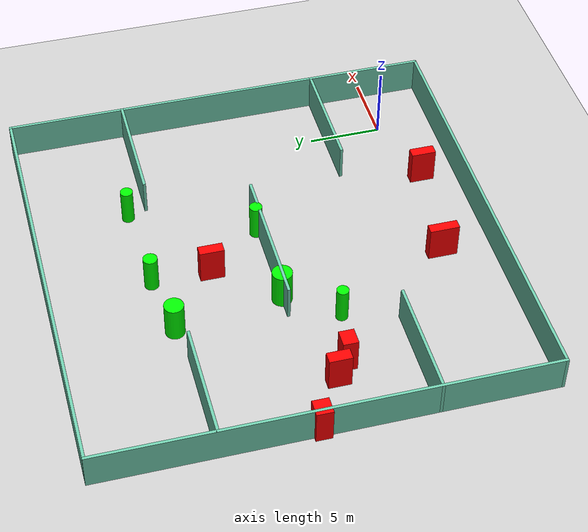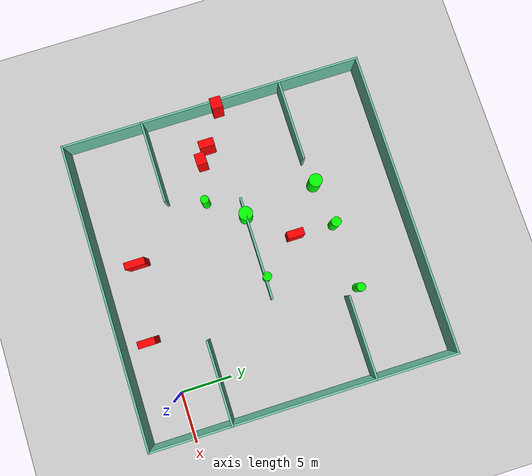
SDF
<sdf version="1.7">
 <world name="default">
  <light name="sun" type="directional">
   <pose>0 0 10 0 -0 0</pose>
   <diffuse>0.8 0.8 0.8 1</diffuse>
   <specular>0.2 0.2 0.2 1</specular>
   <attenuation>
    <range>1000</range>
    <constant>0.9</constant>
    <linear>0.01</linear>
    <quadratic>0.001</quadratic>
   </attenuation>
   <direction>-0.5 0.1 -0.9</direction>
   <spot><inner_angle>0</inner_angle><outer_angle>0</outer_angle><falloff>0</falloff></spot>
  </light>
  <model name="ground_plane">
   <static>1</static>
   <link name="link">
    <collision name="collision">
     <geometry><plane><normal>0 0 1</normal><size>100 100</size></plane></geometry>
     <surface>
      <contact><collide_bitmask>65535</collide_bitmask></contact>
      <friction><ode><mu>100</mu><mu2>50</mu2></ode></friction>
     </surface>
    </collision>
    <visual name="visual">
     <cast_shadows>0</cast_shadows>
     <geometry><plane><normal>0 0 1</normal><size>100 100</size></plane></geometry>
     <material>
      <script><uri>file://media/materials/scripts/gazebo.material</uri><name>Gazebo/Grey</name></script>
     </material>
    </visual>
   </link>
  </model>
  <gravity>0 0 -9.8</gravity>
  <magnetic_field>6e-06 2.3e-05 -4.2e-05</magnetic_field>
  <atmosphere type="adiabatic"/>
  <physics type="ode">
   <max_step_size>0.001</max_step_size>
   <real_time_factor>1</real_time_factor>
   <real_time_update_rate>1000</real_time_update_rate>
  </physics>
  <scene><ambient>0.4 0.4 0.4 1</ambient><background>0.7 0.7 0.7 1</background><shadows>1</shadows></scene>
  <spherical_coordinates>
   <surface_model>EARTH_WGS84</surface_model>
   <latitude_deg>0</latitude_deg>
   <longitude_deg>0</longitude_deg>
   <elevation>0</elevation>
   <heading_deg>0</heading_deg>
  </spherical_coordinates>
  <model name="my_base_walls">
   <link name="Wall_10">
    <collision name="Wall_10_Collision">
     <geometry><box><size>8.2 0.2 2.5</size></box></geometry>
     <pose>0 0 1.25 0 -0 0</pose>
    </collision>
    <visual name="Wall_10_Visual">
     <pose>0 0 1.25 0 -0 0</pose>
     <geometry><box><size>8.2 0.2 2.5</size></box></geometry>
     <material>
      <script><uri>file://media/materials/scripts/gazebo.material</uri><name>Gazebo/Grey</name></script>
      <ambient>0.435294 0.796078 0.67451 1</ambient>
     </material>
     <meta><layer>0</layer></meta>
    </visual>
    <pose>-11 -7 0 0 -0 0</pose>
   </link>
   <link name="Wall_12">
    <collision name="Wall_12_Collision">
     <geometry><box><size>8.2 0.2 2.5</size></box></geometry>
     <pose>0 0 1.25 0 -0 0</pose>
    </collision>
    <visual name="Wall_12_Visual">
     <pose>0 0 1.25 0 -0 0</pose>
     <geometry><box><size>8.2 0.2 2.5</size></box></geometry>
     <material>
      <script><uri>file://media/materials/scripts/gazebo.material</uri><name>Gazebo/Grey</name></script>
      <ambient>0.435294 0.796078 0.67451 1</ambient>
     </material>
     <meta><layer>0</layer></meta>
    </visual>
    <pose>-11 7 0 0 -0 0</pose>
   </link>
   <link name="Wall_14">
    <collision name="Wall_14_Collision">
     <geometry><box><size>8.2 0.2 2.5</size></box></geometry>
     <pose>0 0 1.25 0 -0 0</pose>
    </collision>
    <visual name="Wall_14_Visual">
     <pose>0 0 1.25 0 -0 0</pose>
     <geometry><box><size>8.2 0.2 2.5</size></box></geometry>
     <material>
      <script><uri>file://media/materials/scripts/gazebo.material</uri><name>Gazebo/Grey</name></script>
      <ambient>0.435294 0.796078 0.67451 1</ambient>
     </material>
     <meta><layer>0</layer></meta>
    </visual>
    <pose>11 7 0 0 -0 3.14159</pose>
   </link>
   <link name="Wall_16">
    <collision name="Wall_16_Collision">
     <geometry><box><size>10.2 0.2 2.5</size></box></geometry>
     <pose>0 0 1.25 0 -0 0</pose>
    </collision>
    <visual name="Wall_16_Visual">
     <pose>0 0 1.25 0 -0 0</pose>
     <geometry><box><size>10.2 0.2 2.5</size></box></geometry>
     <material>
      <script><uri>file://media/materials/scripts/gazebo.material</uri><name>Gazebo/Grey</name></script>
      <ambient>0.435294 0.796078 0.67451 1</ambient>
     </material>
     <meta><layer>0</layer></meta>
    </visual>
    <pose>0 0 0 0 -0 3.14159</pose>
   </link>
   <link name="Wall_2">
    <collision name="Wall_2_Collision">
     <geometry><box><size>30.2 0.2 2.5</size></box></geometry>
     <pose>0 0 1.25 0 -0 0</pose>
    </collision>
    <visual name="Wall_2_Visual">
     <pose>0 0 1.25 0 -0 0</pose>
     <geometry><box><size>30.2 0.2 2.5</size></box></geometry>
     <material>
      <script><uri>file://media/materials/scripts/gazebo.material</uri><name>Gazebo/Grey</name></script>
      <ambient>0.435294 0.796078 0.67451 1</ambient>
     </material>
     <meta><layer>0</layer></meta>
    </visual>
    <pose>0 -15 0 0 -0 3.14159</pose>
   </link>
   <link name="Wall_3">
    <collision name="Wall_3_Collision">
     <geometry><box><size>30.2 0.2 2.5</size></box></geometry>
     <pose>0 0 1.25 0 -0 0</pose>
    </collision>
    <visual name="Wall_3_Visual">
     <pose>0 0 1.25 0 -0 0</pose>
     <geometry><box><size>30.2 0.2 2.5</size></box></geometry>
     <material>
      <script><uri>file://media/materials/scripts/gazebo.material</uri><name>Gazebo/Grey</name></script>
      <ambient>0.435294 0.796078 0.67451 1</ambient>
     </material>
     <meta><layer>0</layer></meta>
    </visual>
    <pose>-15 0 0 0 -0 1.5708</pose>
   </link>
   <link name="Wall_4">
    <collision name="Wall_4_Collision">
     <geometry><box><size>30.2 0.2 2.5</size></box></geometry>
     <pose>0 0 1.25 0 -0 0</pose>
    </collision>
    <visual name="Wall_4_Visual">
     <pose>0 0 1.25 0 -0 0</pose>
     <geometry><box><size>30.2 0.2 2.5</size></box></geometry>
     <material>
      <script><uri>file://media/materials/scripts/gazebo.material</uri><name>Gazebo/Grey</name></script>
      <ambient>0.435294 0.796078 0.67451 1</ambient>
     </material>
     <meta><layer>0</layer></meta>
    </visual>
    <pose>0 15 0 0 -0 0</pose>
   </link>
   <link name="Wall_6">
    <collision name="Wall_6_Collision">
     <geometry><box><size>30.2 0.2 2.5</size></box></geometry>
     <pose>0 0 1.25 0 -0 0</pose>
    </collision>
    <visual name="Wall_6_Visual">
     <pose>0 0 1.25 0 -0 0</pose>
     <geometry><box><size>30.2 0.2 2.5</size></box></geometry>
     <material>
      <script><uri>file://media/materials/scripts/gazebo.material</uri><name>Gazebo/Grey</name></script>
      <ambient>0.435294 0.796078 0.67451 1</ambient>
     </material>
     <meta><layer>0</layer></meta>
    </visual>
    <pose>15 0 0 0 -0 1.5708</pose>
   </link>
   <link name="Wall_8">
    <collision name="Wall_8_Collision">
     <geometry><box><size>8.2 0.2 2.5</size></box></geometry>
     <pose>0 0 1.25 0 -0 0</pose>
    </collision>
    <visual name="Wall_8_Visual">
     <pose>0 0 1.25 0 -0 0</pose>
     <geometry><box><size>8.2 0.2 2.5</size></box></geometry>
     <material>
      <script><uri>file://media/materials/scripts/gazebo.material</uri><name>Gazebo/Grey</name></script>
      <ambient>0.435294 0.796078 0.67451 1</ambient>
     </material>
     <meta><layer>0</layer></meta>
    </visual>
    <pose>11 -7 0 0 -0 3.14159</pose>
   </link>
   <static>1</static>
   <pose>-11 11 0 0 -0 0</pose>
  </model>
  <model name="cylinder1">
   <static>1</static>
   <link name="link">
    <inertial>
     <mass>1</mass>
     <inertia><ixx>0.5</ixx><ixy>0</ixy><ixz>0</ixz><iyy>0.5</iyy><iyz>0</iyz><izz>1</izz></inertia>
    </inertial>
    <collision name="collision">
     <geometry><cylinder><radius>0.6588425281170266</radius><length>2.5</length></cylinder></geometry>
    </collision>
    <visual name="visual">
     <geometry><cylinder><radius>0.6588425281170266</radius><length>2.5</length></cylinder></geometry>
     <material>
      <ambient>0 1 0 1</ambient>
      <diffuse>0 1 0 1</diffuse>
      <specular>0.1 0.1 0.1 1</specular>
      <emissive>0 0 0 0</emissive>
     </material>
    </visual>
   </link>
   <pose>-15.548638291465878 18.409499319395298 1.25 0 0 0</pose>
  </model>
  <model name="cylinder2">
   <static>1</static>
   <link name="link">
    <inertial>
     <mass>1</mass>
     <inertia><ixx>0.5</ixx><ixy>0</ixy><ixz>0</ixz><iyy>0.5</iyy><iyz>0</iyz><izz>1</izz></inertia>
    </inertial>
    <collision name="collision">
     <geometry><cylinder><radius>0.42736879070099776</radius><length>2.5</length></cylinder></geometry>
    </collision>
    <visual name="visual">
     <geometry><cylinder><radius>0.42736879070099776</radius><length>2.5</length></cylinder></geometry>
     <material>
      <ambient>0 1 0 1</ambient>
      <diffuse>0 1 0 1</diffuse>
      <specular>0.1 0.1 0.1 1</specular>
      <emissive>0 0 0 0</emissive>
     </material>
    </visual>
   </link>
   <pose>-4.529891322987638 19.333372755755065 1.25 0 0 0</pose>
  </model>
  <model name="cylinder3">
   <static>1</static>
   <link name="link">
    <inertial>
     <mass>1</mass>
     <inertia><ixx>0.5</ixx><ixy>0</ixy><ixz>0</ixz><iyy>0.5</iyy><iyz>0</iyz><izz>1</izz></inertia>
    </inertial>
    <collision name="collision">
     <geometry><cylinder><radius>0.4835140998329277</radius><length>2.5</length></cylinder></geometry>
    </collision>
    <visual name="visual">
     <geometry><cylinder><radius>0.4835140998329277</radius><length>2.5</length></cylinder></geometry>
     <material>
      <ambient>0 1 0 1</ambient>
      <diffuse>0 1 0 1</diffuse>
      <specular>0.1 0.1 0.1 1</specular>
      <emissive>0 0 0 0</emissive>
     </material>
    </visual>
   </link>
   <pose>-11.130409009258392 19.03849600179683 1.25 0 0 0</pose>
  </model>
  <model name="cylinder4">
   <static>1</static>
   <link name="link">
    <inertial>
     <mass>1</mass>
     <inertia><ixx>0.5</ixx><ixy>0</ixy><ixz>0</ixz><iyy>0.5</iyy><iyz>0</iyz><izz>1</izz></inertia>
    </inertial>
    <collision name="collision">
     <geometry><cylinder><radius>0.684311142709973</radius><length>2.5</length></cylinder></geometry>
    </collision>
    <visual name="visual">
     <geometry><cylinder><radius>0.684311142709973</radius><length>2.5</length></cylinder></geometry>
     <material>
      <ambient>0 1 0 1</ambient>
      <diffuse>0 1 0 1</diffuse>
      <specular>0.1 0.1 0.1 1</specular>
      <emissive>0 0 0 0</emissive>
     </material>
    </visual>
   </link>
   <pose>-14.484695556101668 11.027021399434648 1.25 0 0 0</pose>
  </model>
  <model name="cylinder5">
   <static>1</static>
   <link name="link">
    <inertial>
     <mass>1</mass>
     <inertia><ixx>0.5</ixx><ixy>0</ixy><ixz>0</ixz><iyy>0.5</iyy><iyz>0</iyz><izz>1</izz></inertia>
    </inertial>
    <collision name="collision">
     <geometry><cylinder><radius>0.43492540246482453</radius><length>2.5</length></cylinder></geometry>
    </collision>
    <visual name="visual">
     <geometry><cylinder><radius>0.43492540246482453</radius><length>2.5</length></cylinder></geometry>
     <material>
      <ambient>0 1 0 1</ambient>
      <diffuse>0 1 0 1</diffuse>
      <specular>0.1 0.1 0.1 1</specular>
      <emissive>0 0 0 0</emissive>
     </material>
    </visual>
   </link>
   <pose>-8.129543637624469 11.188459574613184 1.25 0 0 0</pose>
  </model>
  <model name="cylinder6">
   <static>1</static>
   <link name="link">
    <inertial>
     <mass>1</mass>
     <inertia><ixx>0.5</ixx><ixy>0</ixy><ixz>0</ixz><iyy>0.5</iyy><iyz>0</iyz><izz>1</izz></inertia>
    </inertial>
    <collision name="collision">
     <geometry><cylinder><radius>0.4112653414084293</radius><length>2.5</length></cylinder></geometry>
    </collision>
    <visual name="visual">
     <geometry><cylinder><radius>0.4112653414084293</radius><length>2.5</length></cylinder></geometry>
     <material>
      <ambient>0 1 0 1</ambient>
      <diffuse>0 1 0 1</diffuse>
      <specular>0.1 0.1 0.1 1</specular>
      <emissive>0 0 0 0</emissive>
     </material>
    </visual>
   </link>
   <pose>-16.94704067519094 7.675386826645614 1.25 0 0 0</pose>
  </model>
  <model name="box1">
   <static>1</static>
   <link name="link">
    <inertial>
     <mass>1</mass>
     <inertia><ixx>0.083</ixx><ixy>0</ixy><ixz>0</ixz><iyy>0.083</iyy><iyz>0</iyz><izz>0.083</izz></inertia>
    </inertial>
    <collision name="collision">
     <geometry><box><size>0.7069827096264998 1.693635428215036 2.5</size></box></geometry>
    </collision>
    <visual name="visual">
     <geometry><box><size>0.7069827096264998 1.693635428215036 2.5</size></box></geometry>
     <material>
      <ambient>1 0 0 1</ambient>
      <diffuse>1 0 0 1</diffuse>
      <specular>0.1 0.1 0.1 1</specular>
      <emissive>0 0 0 0</emissive>
     </material>
    </visual>
    <sensor name="my_contact" type="contact">
     <contact><collision>box_collision</collision><topic>__default_topic__</topic></contact>
    </sensor>
   </link>
   <pose>-5.587086996875001 -1.436726138087164 1.25 0 0 0</pose>
  </model>
  <model name="box2">
   <static>1</static>
   <link name="link">
    <inertial>
     <mass>1</mass>
     <inertia><ixx>0.083</ixx><ixy>0</ixy><ixz>0</ixz><iyy>0.083</iyy><iyz>0</iyz><izz>0.083</izz></inertia>
    </inertial>
    <collision name="collision">
     <geometry><box><size>0.7256995473181073 1.6563126365907723 2.5</size></box></geometry>
    </collision>
    <visual name="visual">
     <geometry><box><size>0.7256995473181073 1.6563126365907723 2.5</size></box></geometry>
     <material>
      <ambient>1 0 0 1</ambient>
      <diffuse>1 0 0 1</diffuse>
      <specular>0.1 0.1 0.1 1</specular>
      <emissive>0 0 0 0</emissive>
     </material>
    </visual>
    <sensor name="my_contact" type="contact">
     <contact><collision>box_collision</collision><topic>__default_topic__</topic></contact>
    </sensor>
   </link>
   <pose>-11.24182142528696 15.0037586862158 1.25 0 0 0</pose>
  </model>
  <model name="box3">
   <static>1</static>
   <link name="link">
    <inertial>
     <mass>1</mass>
     <inertia><ixx>0.083</ixx><ixy>0</ixy><ixz>0</ixz><iyy>0.083</iyy><iyz>0</iyz><izz>0.083</izz></inertia>
    </inertial>
    <collision name="collision">
     <geometry><box><size>1.1576314026781116 1.1016722846684854 2.5</size></box></geometry>
    </collision>
    <visual name="visual">
     <geometry><box><size>1.1576314026781116 1.1016722846684854 2.5</size></box></geometry>
     <material>
      <ambient>1 0 0 1</ambient>
      <diffuse>1 0 0 1</diffuse>
      <specular>0.1 0.1 0.1 1</specular>
      <emissive>0 0 0 0</emissive>
     </material>
    </visual>
    <sensor name="my_contact" type="contact">
     <contact><collision>box_collision</collision><topic>__default_topic__</topic></contact>
    </sensor>
   </link>
   <pose>-25.78644750229618 11.515719957851335 1.25 0 0 0</pose>
  </model>
  <model name="box4">
   <static>1</static>
   <link name="link">
    <inertial>
     <mass>1</mass>
     <inertia><ixx>0.083</ixx><ixy>0</ixy><ixz>0</ixz><iyy>0.083</iyy><iyz>0</iyz><izz>0.083</izz></inertia>
    </inertial>
    <collision name="collision">
     <geometry><box><size>0.6720400167519827 2.015948135315331 2.5</size></box></geometry>
    </collision>
    <visual name="visual">
     <geometry><box><size>0.6720400167519827 2.015948135315331 2.5</size></box></geometry>
     <material>
      <ambient>1 0 0 1</ambient>
      <diffuse>1 0 0 1</diffuse>
      <specular>0.1 0.1 0.1 1</specular>
      <emissive>0 0 0 0</emissive>
     </material>
    </visual>
    <sensor name="my_contact" type="contact">
     <contact><collision>box_collision</collision><topic>__default_topic__</topic></contact>
    </sensor>
   </link>
   <pose>-13.063490610752636 -0.43636242178135154 1.25 0 0 0</pose>
  </model>
  <model name="box5">
   <static>1</static>
   <link name="link">
    <inertial>
     <mass>1</mass>
     <inertia><ixx>0.083</ixx><ixy>0</ixy><ixz>0</ixz><iyy>0.083</iyy><iyz>0</iyz><izz>0.083</izz></inertia>
    </inertial>
    <collision name="collision">
     <geometry><box><size>1.1552887817136432 1.017105289422892 2.5</size></box></geometry>
    </collision>
    <visual name="visual">
     <geometry><box><size>1.1552887817136432 1.017105289422892 2.5</size></box></geometry>
     <material>
      <ambient>1 0 0 1</ambient>
      <diffuse>1 0 0 1</diffuse>
      <specular>0.1 0.1 0.1 1</specular>
      <emissive>0 0 0 0</emissive>
     </material>
    </visual>
    <sensor name="my_contact" type="contact">
     <contact><collision>box_collision</collision><topic>__default_topic__</topic></contact>
    </sensor>
   </link>
   <pose>-20.8794263913493 8.45715850393895 1.25 0 0 0</pose>
  </model>
  <model name="box6">
   <static>1</static>
   <link name="link">
    <inertial>
     <mass>1</mass>
     <inertia><ixx>0.083</ixx><ixy>0</ixy><ixz>0</ixz><iyy>0.083</iyy><iyz>0</iyz><izz>0.083</izz></inertia>
    </inertial>
    <collision name="collision">
     <geometry><box><size>0.7913331401355557 1.5269107982056203 2.5</size></box></geometry>
    </collision>
    <visual name="visual">
     <geometry><box><size>0.7913331401355557 1.5269107982056203 2.5</size></box></geometry>
     <material>
      <ambient>1 0 0 1</ambient>
      <diffuse>1 0 0 1</diffuse>
      <specular>0.1 0.1 0.1 1</specular>
      <emissive>0 0 0 0</emissive>
     </material>
    </visual>
    <sensor name="my_contact" type="contact">
     <contact><collision>box_collision</collision><topic>__default_topic__</topic></contact>
    </sensor>
   </link>
   <pose>-22.195536776680537 9.426209762506982 1.25 0 0 0</pose>
  </model>
 </world>
</sdf>
